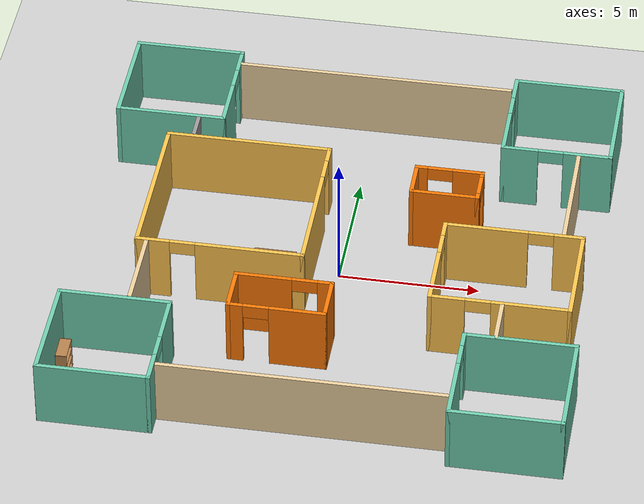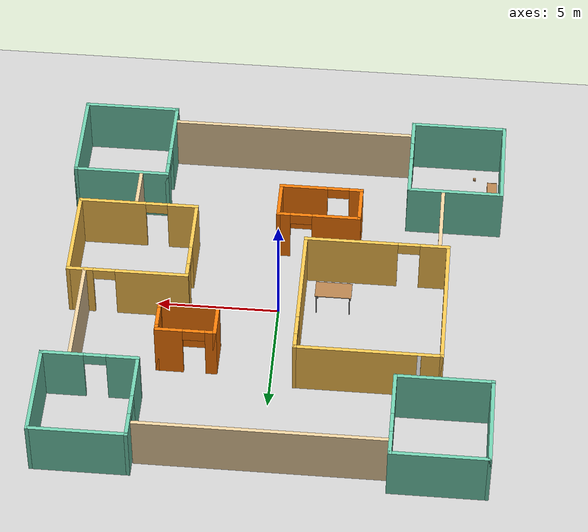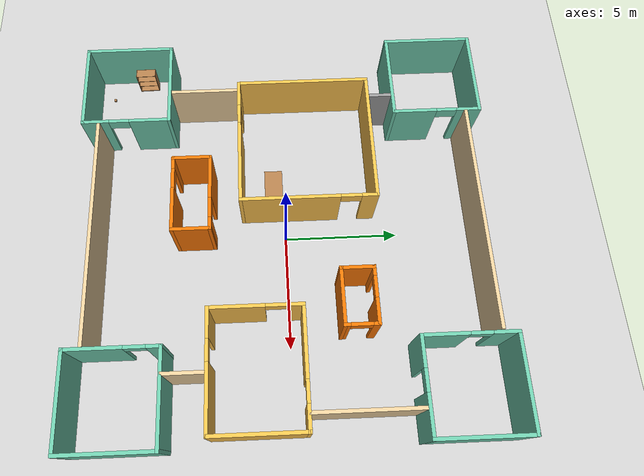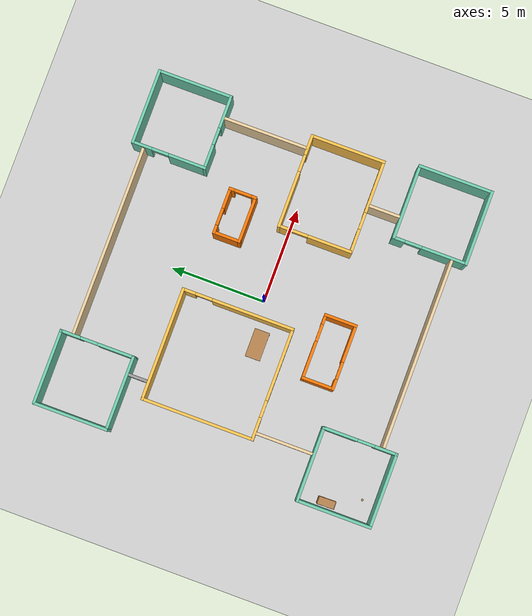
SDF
<sdf version="1.6">
 <world name="default">
  <model name="ground_plane">
   <static>1</static>
   <link name="link">
    <collision name="collision">
     <geometry><plane><normal>0 0 1</normal><size>100 100</size></plane></geometry>
     <surface><friction><ode><mu>100</mu><mu2>50</mu2></ode></friction></surface>
    </collision>
    <visual name="visual">
     <cast_shadows>0</cast_shadows>
     <geometry><plane><normal>0 0 1</normal><size>100 100</size></plane></geometry>
     <material>
      <script><uri>file://media/materials/scripts/gazebo.material</uri><name>Gazebo/Grey</name></script>
     </material>
    </visual>
   </link>
  </model>
  <model name="building">
   <pose>0.04416 0.01107 0 0 -0 0</pose>
   <link name="Wall_100">
    <collision name="Wall_100_Collision">
     <geometry><box><size>2.5 0.15 2.5</size></box></geometry>
     <pose>0 0 1.25 0 -0 0</pose>
    </collision>
    <visual name="Wall_100_Visual">
     <pose>0 0 1.25 0 -0 0</pose>
     <geometry><box><size>2.5 0.15 2.5</size></box></geometry>
     <material>
      <script><uri>file://media/materials/scripts/gazebo.material</uri><name>Gazebo/Grey</name></script>
      <ambient>0.996078 0.47451 0.0196078 1</ambient>
     </material>
     <meta><layer>0</layer></meta>
    </visual>
    <pose>3.37853 2.13615 0 0 -0 3.14159</pose>
   </link>
   <link name="Wall_101">
    <collision name="Wall_101_Collision">
     <geometry><box><size>1.5 0.15 2.5</size></box></geometry>
     <pose>0 0 1.25 0 -0 0</pose>
    </collision>
    <visual name="Wall_101_Visual">
     <pose>0 0 1.25 0 -0 0</pose>
     <geometry><box><size>1.5 0.15 2.5</size></box></geometry>
     <material>
      <script><uri>file://media/materials/scripts/gazebo.material</uri><name>Gazebo/Grey</name></script>
      <ambient>0.996078 0.47451 0.0196078 1</ambient>
     </material>
     <meta><layer>0</layer></meta>
    </visual>
    <pose>2.20353 2.81115 0 0 -0 1.5708</pose>
   </link>
   <link name="Wall_103">
    <collision name="Wall_103_Collision">
     <geometry><box><size>1.75 0.15 2.5</size></box></geometry>
     <pose>0 0 1.25 0 -0 0</pose>
    </collision>
    <visual name="Wall_103_Visual">
     <pose>0 0 1.25 0 -0 0</pose>
     <geometry><box><size>1.75 0.15 2.5</size></box></geometry>
     <material>
      <script><uri>file://media/materials/scripts/gazebo.material</uri><name>Gazebo/Grey</name></script>
      <ambient>0.996078 0.47451 0.0196078 1</ambient>
     </material>
     <meta><layer>0</layer></meta>
    </visual>
    <pose>-3.11094 -4.01873 0 0 0 -1.5708</pose>
   </link>
   <link name="Wall_104">
    <pose>-1.43594 -4.81873 0 0 -0 0</pose>
    <visual name="Wall_104_Visual_0">
     <pose>-1.45465 0 1.25 0 -0 0</pose>
     <geometry><box><size>0.590693 0.15 2.5</size></box></geometry>
     <material>
      <script><uri>file://media/materials/scripts/gazebo.material</uri><name>Gazebo/Grey</name></script>
      <ambient>0.996078 0.47451 0.0196078 1</ambient>
     </material>
     <meta><layer>0</layer></meta>
    </visual>
    <collision name="Wall_104_Collision_0">
     <geometry><box><size>0.590693 0.15 2.5</size></box></geometry>
     <pose>-1.45465 0 1.25 0 -0 0</pose>
    </collision>
    <visual name="Wall_104_Visual_1">
     <pose>0.745346 0 1.25 0 -0 0</pose>
     <geometry><box><size>2.00931 0.15 2.5</size></box></geometry>
     <material>
      <script><uri>file://media/materials/scripts/gazebo.material</uri><name>Gazebo/Grey</name></script>
      <ambient>0.996078 0.47451 0.0196078 1</ambient>
     </material>
     <meta><layer>0</layer></meta>
    </visual>
    <collision name="Wall_104_Collision_1">
     <geometry><box><size>2.00931 0.15 2.5</size></box></geometry>
     <pose>0.745346 0 1.25 0 -0 0</pose>
    </collision>
    <visual name="Wall_104_Visual_2">
     <pose>-0.709307 0 2.25 0 -0 0</pose>
     <geometry><box><size>0.9 0.15 0.5</size></box></geometry>
     <material>
      <script><uri>file://media/materials/scripts/gazebo.material</uri><name>Gazebo/Grey</name></script>
      <ambient>0.996078 0.47451 0.0196078 1</ambient>
     </material>
     <meta><layer>0</layer></meta>
    </visual>
    <collision name="Wall_104_Collision_2">
     <geometry><box><size>0.9 0.15 0.5</size></box></geometry>
     <pose>-0.709307 0 2.25 0 -0 0</pose>
    </collision>
   </link>
   <link name="Wall_105">
    <collision name="Wall_105_Collision">
     <geometry><box><size>1.75 0.15 2.5</size></box></geometry>
     <pose>0 0 1.25 0 -0 0</pose>
    </collision>
    <visual name="Wall_105_Visual">
     <pose>0 0 1.25 0 -0 0</pose>
     <geometry><box><size>1.75 0.15 2.5</size></box></geometry>
     <material>
      <script><uri>file://media/materials/scripts/gazebo.material</uri><name>Gazebo/Grey</name></script>
      <ambient>0.996078 0.47451 0.0196078 1</ambient>
     </material>
     <meta><layer>0</layer></meta>
    </visual>
    <pose>0.239057 -4.01873 0 0 -0 1.5708</pose>
   </link>
   <link name="Wall_106">
    <pose>-1.43594 -3.21873 0 0 -0 3.14159</pose>
    <visual name="Wall_106_Visual_0">
     <pose>-1.46139 0 1.25 0 -0 0</pose>
     <geometry><box><size>0.577222 0.15 2.5</size></box></geometry>
     <material>
      <script><uri>file://media/materials/scripts/gazebo.material</uri><name>Gazebo/Grey</name></script>
      <ambient>0.996078 0.47451 0.0196078 1</ambient>
     </material>
     <meta><layer>0</layer></meta>
    </visual>
    <collision name="Wall_106_Collision_0">
     <geometry><box><size>0.577222 0.15 2.5</size></box></geometry>
     <pose>-1.46139 0 1.25 0 -0 0</pose>
    </collision>
    <visual name="Wall_106_Visual_1">
     <pose>0.738611 0 1.25 0 -0 0</pose>
     <geometry><box><size>2.02278 0.15 2.5</size></box></geometry>
     <material>
      <script><uri>file://media/materials/scripts/gazebo.material</uri><name>Gazebo/Grey</name></script>
      <ambient>0.996078 0.47451 0.0196078 1</ambient>
     </material>
     <meta><layer>0</layer></meta>
    </visual>
    <collision name="Wall_106_Collision_1">
     <geometry><box><size>2.02278 0.15 2.5</size></box></geometry>
     <pose>0.738611 0 1.25 0 -0 0</pose>
    </collision>
    <visual name="Wall_106_Visual_2">
     <pose>-0.722778 0 2.25 0 -0 0</pose>
     <geometry><box><size>0.9 0.15 0.5</size></box></geometry>
     <material>
      <script><uri>file://media/materials/scripts/gazebo.material</uri><name>Gazebo/Grey</name></script>
      <ambient>0.996078 0.47451 0.0196078 1</ambient>
     </material>
     <meta><layer>0</layer></meta>
    </visual>
    <collision name="Wall_106_Collision_2">
     <geometry><box><size>0.9 0.15 0.5</size></box></geometry>
     <pose>-0.722778 0 2.25 0 -0 0</pose>
    </collision>
   </link>
   <link name="Wall_108">
    <collision name="Wall_108_Collision">
     <geometry><box><size>3 0.15 2.5</size></box></geometry>
     <pose>0 0 1.25 0 -0 0</pose>
    </collision>
    <visual name="Wall_108_Visual">
     <pose>0 0 1.25 0 -0 0</pose>
     <geometry><box><size>3 0.15 2.5</size></box></geometry>
     <material>
      <script><uri>file://media/materials/scripts/gazebo.material</uri><name>Gazebo/Grey</name></script>
      <ambient>0.921569 0.807843 0.615686 1</ambient>
     </material>
     <meta><layer>0</layer></meta>
    </visual>
    <pose>-6.50973 -3.48506 0 0 0 -1.5708</pose>
   </link>
   <link name="Wall_114">
    <collision name="Wall_114_Collision">
     <geometry><box><size>4.5 0.15 2.5</size></box></geometry>
     <pose>0 0 1.25 0 -0 0</pose>
    </collision>
    <visual name="Wall_114_Visual">
     <pose>0 0 1.25 0 -0 0</pose>
     <geometry><box><size>4.5 0.15 2.5</size></box></geometry>
     <material>
      <script><uri>file://media/materials/scripts/gazebo.material</uri><name>Gazebo/Grey</name></script>
      <ambient>0.921569 0.807843 0.615686 1</ambient>
     </material>
     <meta><layer>0</layer></meta>
    </visual>
    <pose>7.81153 2.79707 0 0 0 -1.5708</pose>
   </link>
   <link name="Wall_116">
    <collision name="Wall_116_Collision">
     <geometry><box><size>10 0.15 2.5</size></box></geometry>
     <pose>0 0 1.25 0 -0 0</pose>
    </collision>
    <visual name="Wall_116_Visual">
     <pose>0 0 1.25 0 -0 0</pose>
     <geometry><box><size>10 0.15 2.5</size></box></geometry>
     <material>
      <script><uri>file://media/materials/scripts/gazebo.material</uri><name>Gazebo/Grey</name></script>
      <ambient>0.921569 0.807843 0.615686 1</ambient>
     </material>
     <meta><layer>0</layer></meta>
    </visual>
    <pose>0.006519 -8.20878 0 0 -0 0</pose>
   </link>
   <link name="Wall_118">
    <collision name="Wall_118_Collision">
     <geometry><box><size>1.75 0.15 2.5</size></box></geometry>
     <pose>0 0 1.25 0 -0 0</pose>
    </collision>
    <visual name="Wall_118_Visual">
     <pose>0 0 1.25 0 -0 0</pose>
     <geometry><box><size>1.75 0.15 2.5</size></box></geometry>
     <material>
      <script><uri>file://media/materials/scripts/gazebo.material</uri><name>Gazebo/Grey</name></script>
      <ambient>0.921569 0.807843 0.615686 1</ambient>
     </material>
     <meta><layer>0</layer></meta>
    </visual>
    <pose>6.15848 -4.23502 0 0 0 -1.5708</pose>
   </link>
   <link name="Wall_121">
    <collision name="Wall_121_Collision">
     <geometry><box><size>1 0.15 2.5</size></box></geometry>
     <pose>0 0 1.25 0 -0 0</pose>
    </collision>
    <visual name="Wall_121_Visual">
     <pose>0 0 1.25 0 -0 0</pose>
     <geometry><box><size>1 0.15 2.5</size></box></geometry>
     <material>
      <script><uri>file://media/materials/scripts/gazebo.material</uri><name>Gazebo/Grey</name></script>
      <ambient>1 1 1 1</ambient>
     </material>
     <meta><layer>0</layer></meta>
    </visual>
    <pose>-5.96902 4.51336 0 0 0 -1.5708</pose>
   </link>
   <link name="Wall_124">
    <collision name="Wall_124_Collision">
     <geometry><box><size>10 0.15 2.5</size></box></geometry>
     <pose>0 0 1.25 0 -0 0</pose>
    </collision>
    <visual name="Wall_124_Visual">
     <pose>0 0 1.25 0 -0 0</pose>
     <geometry><box><size>10 0.15 2.5</size></box></geometry>
     <material>
      <script><uri>file://media/materials/scripts/gazebo.material</uri><name>Gazebo/Grey</name></script>
      <ambient>0.921569 0.807843 0.615686 1</ambient>
     </material>
     <meta><layer>0</layer></meta>
    </visual>
    <pose>-0.024379 8.30625 0 0 -0 0</pose>
   </link>
   <link name="Wall_58">
    <collision name="Wall_58_Collision">
     <geometry><box><size>4 0.15 2.5</size></box></geometry>
     <pose>0 0 1.25 0 -0 0</pose>
    </collision>
    <visual name="Wall_58_Visual">
     <pose>0 0 1.25 0 -0 0</pose>
     <geometry><box><size>4 0.15 2.5</size></box></geometry>
     <material>
      <script><uri>file://media/materials/scripts/gazebo.material</uri><name>Gazebo/Grey</name></script>
      <ambient>0.435294 0.796078 0.67451 1</ambient>
     </material>
     <meta><layer>0</layer></meta>
    </visual>
    <pose>-7.00929 8.93364 0 0 -0 0</pose>
   </link>
   <link name="Wall_59">
    <pose>-5.08429 7.00864 0 0 0 -1.5708</pose>
    <visual name="Wall_59_Visual_0">
     <pose>-1.4441 0 1.25 0 -0 0</pose>
     <geometry><box><size>1.11179 0.15 2.5</size></box></geometry>
     <material>
      <script><uri>file://media/materials/scripts/gazebo.material</uri><name>Gazebo/Grey</name></script>
      <ambient>0.435294 0.796078 0.67451 1</ambient>
     </material>
     <meta><layer>0</layer></meta>
    </visual>
    <collision name="Wall_59_Collision_0">
     <geometry><box><size>1.11179 0.15 2.5</size></box></geometry>
     <pose>-1.4441 0 1.25 0 -0 0</pose>
    </collision>
    <visual name="Wall_59_Visual_1">
     <pose>1.0059 0 1.25 0 -0 0</pose>
     <geometry><box><size>1.98821 0.15 2.5</size></box></geometry>
     <material>
      <script><uri>file://media/materials/scripts/gazebo.material</uri><name>Gazebo/Grey</name></script>
      <ambient>0.435294 0.796078 0.67451 1</ambient>
     </material>
     <meta><layer>0</layer></meta>
    </visual>
    <collision name="Wall_59_Collision_1">
     <geometry><box><size>1.98821 0.15 2.5</size></box></geometry>
     <pose>1.0059 0 1.25 0 -0 0</pose>
    </collision>
    <visual name="Wall_59_Visual_2">
     <pose>-0.438207 0 2.25 0 -0 0</pose>
     <geometry><box><size>0.9 0.15 0.5</size></box></geometry>
     <material>
      <script><uri>file://media/materials/scripts/gazebo.material</uri><name>Gazebo/Grey</name></script>
      <ambient>0.435294 0.796078 0.67451 1</ambient>
     </material>
     <meta><layer>0</layer></meta>
    </visual>
    <collision name="Wall_59_Collision_2">
     <geometry><box><size>0.9 0.15 0.5</size></box></geometry>
     <pose>-0.438207 0 2.25 0 -0 0</pose>
    </collision>
   </link>
   <link name="Wall_60">
    <collision name="Wall_60_Collision">
     <geometry><box><size>4 0.15 2.5</size></box></geometry>
     <pose>0 0 1.25 0 -0 0</pose>
    </collision>
    <visual name="Wall_60_Visual">
     <pose>0 0 1.25 0 -0 0</pose>
     <geometry><box><size>4 0.15 2.5</size></box></geometry>
     <material>
      <script><uri>file://media/materials/scripts/gazebo.material</uri><name>Gazebo/Grey</name></script>
      <ambient>0.435294 0.796078 0.67451 1</ambient>
     </material>
     <meta><layer>0</layer></meta>
    </visual>
    <pose>-7.00929 5.08364 0 0 -0 3.14159</pose>
   </link>
   <link name="Wall_61">
    <collision name="Wall_61_Collision">
     <geometry><box><size>4 0.15 2.5</size></box></geometry>
     <pose>0 0 1.25 0 -0 0</pose>
    </collision>
    <visual name="Wall_61_Visual">
     <pose>0 0 1.25 0 -0 0</pose>
     <geometry><box><size>4 0.15 2.5</size></box></geometry>
     <material>
      <script><uri>file://media/materials/scripts/gazebo.material</uri><name>Gazebo/Grey</name></script>
      <ambient>0.435294 0.796078 0.67451 1</ambient>
     </material>
     <meta><layer>0</layer></meta>
    </visual>
    <pose>-8.93429 7.00864 0 0 -0 1.5708</pose>
   </link>
   <link name="Wall_63">
    <collision name="Wall_63_Collision">
     <geometry><box><size>4 0.15 2.5</size></box></geometry>
     <pose>0 0 1.25 0 -0 0</pose>
    </collision>
    <visual name="Wall_63_Visual">
     <pose>0 0 1.25 0 -0 0</pose>
     <geometry><box><size>4 0.15 2.5</size></box></geometry>
     <material>
      <script><uri>file://media/materials/scripts/gazebo.material</uri><name>Gazebo/Grey</name></script>
      <ambient>0.435294 0.796078 0.67451 1</ambient>
     </material>
     <meta><layer>0</layer></meta>
    </visual>
    <pose>8.93429 6.99136 0 0 0 -1.5708</pose>
   </link>
   <link name="Wall_64">
    <pose>7.00929 5.06635 0 0 -0 3.14159</pose>
    <visual name="Wall_64_Visual_0">
     <pose>-1.11962 0 1.25 0 -0 0</pose>
     <geometry><box><size>1.76077 0.15 2.5</size></box></geometry>
     <material>
      <script><uri>file://media/materials/scripts/gazebo.material</uri><name>Gazebo/Grey</name></script>
      <ambient>0.435294 0.796078 0.67451 1</ambient>
     </material>
     <meta><layer>0</layer></meta>
    </visual>
    <collision name="Wall_64_Collision_0">
     <geometry><box><size>1.76077 0.15 2.5</size></box></geometry>
     <pose>-1.11962 0 1.25 0 -0 0</pose>
    </collision>
    <visual name="Wall_64_Visual_1">
     <pose>1.33038 0 1.25 0 -0 0</pose>
     <geometry><box><size>1.33923 0.15 2.5</size></box></geometry>
     <material>
      <script><uri>file://media/materials/scripts/gazebo.material</uri><name>Gazebo/Grey</name></script>
      <ambient>0.435294 0.796078 0.67451 1</ambient>
     </material>
     <meta><layer>0</layer></meta>
    </visual>
    <collision name="Wall_64_Collision_1">
     <geometry><box><size>1.33923 0.15 2.5</size></box></geometry>
     <pose>1.33038 0 1.25 0 -0 0</pose>
    </collision>
    <visual name="Wall_64_Visual_2">
     <pose>0.210767 0 2.25 0 -0 0</pose>
     <geometry><box><size>0.9 0.15 0.5</size></box></geometry>
     <material>
      <script><uri>file://media/materials/scripts/gazebo.material</uri><name>Gazebo/Grey</name></script>
      <ambient>0.435294 0.796078 0.67451 1</ambient>
     </material>
     <meta><layer>0</layer></meta>
    </visual>
    <collision name="Wall_64_Collision_2">
     <geometry><box><size>0.9 0.15 0.5</size></box></geometry>
     <pose>0.210767 0 2.25 0 -0 0</pose>
    </collision>
   </link>
   <link name="Wall_65">
    <pose>5.08429 6.99136 0 0 -0 1.5708</pose>
    <visual name="Wall_65_Visual_0">
     <pose>-0.997252 0 1.25 0 -0 0</pose>
     <geometry><box><size>2.0055 0.15 2.5</size></box></geometry>
     <material>
      <script><uri>file://media/materials/scripts/gazebo.material</uri><name>Gazebo/Grey</name></script>
      <ambient>0.435294 0.796078 0.67451 1</ambient>
     </material>
     <meta><layer>0</layer></meta>
    </visual>
    <collision name="Wall_65_Collision_0">
     <geometry><box><size>2.0055 0.15 2.5</size></box></geometry>
     <pose>-0.997252 0 1.25 0 -0 0</pose>
    </collision>
    <visual name="Wall_65_Visual_1">
     <pose>1.45275 0 1.25 0 -0 0</pose>
     <geometry><box><size>1.0945 0.15 2.5</size></box></geometry>
     <material>
      <script><uri>file://media/materials/scripts/gazebo.material</uri><name>Gazebo/Grey</name></script>
      <ambient>0.435294 0.796078 0.67451 1</ambient>
     </material>
     <meta><layer>0</layer></meta>
    </visual>
    <collision name="Wall_65_Collision_1">
     <geometry><box><size>1.0945 0.15 2.5</size></box></geometry>
     <pose>1.45275 0 1.25 0 -0 0</pose>
    </collision>
    <visual name="Wall_65_Visual_2">
     <pose>0.455496 0 2.25 0 -0 0</pose>
     <geometry><box><size>0.9 0.15 0.5</size></box></geometry>
     <material>
      <script><uri>file://media/materials/scripts/gazebo.material</uri><name>Gazebo/Grey</name></script>
      <ambient>0.435294 0.796078 0.67451 1</ambient>
     </material>
     <meta><layer>0</layer></meta>
    </visual>
    <collision name="Wall_65_Collision_2">
     <geometry><box><size>0.9 0.15 0.5</size></box></geometry>
     <pose>0.455496 0 2.25 0 -0 0</pose>
    </collision>
   </link>
   <link name="Wall_66">
    <collision name="Wall_66_Collision">
     <geometry><box><size>4 0.15 2.5</size></box></geometry>
     <pose>0 0 1.25 0 -0 0</pose>
    </collision>
    <visual name="Wall_66_Visual">
     <pose>0 0 1.25 0 -0 0</pose>
     <geometry><box><size>4 0.15 2.5</size></box></geometry>
     <material>
      <script><uri>file://media/materials/scripts/gazebo.material</uri><name>Gazebo/Grey</name></script>
      <ambient>0.435294 0.796078 0.67451 1</ambient>
     </material>
     <meta><layer>0</layer></meta>
    </visual>
    <pose>7.00929 8.91635 0 0 -0 0</pose>
   </link>
   <link name="Wall_71">
    <collision name="Wall_71_Collision">
     <geometry><box><size>4 0.15 2.5</size></box></geometry>
     <pose>0 0 1.25 0 -0 0</pose>
    </collision>
    <visual name="Wall_71_Visual">
     <pose>0 0 1.25 0 -0 0</pose>
     <geometry><box><size>4 0.15 2.5</size></box></geometry>
     <material>
      <script><uri>file://media/materials/scripts/gazebo.material</uri><name>Gazebo/Grey</name></script>
      <ambient>0.435294 0.796078 0.67451 1</ambient>
     </material>
     <meta><layer>0</layer></meta>
    </visual>
    <pose>7.00929 -8.93364 0 0 -0 3.14159</pose>
   </link>
   <link name="Wall_72">
    <pose>5.08429 -7.00864 0 0 -0 1.5708</pose>
    <visual name="Wall_72_Visual_0">
     <pose>-0.779391 0 1.25 0 -0 0</pose>
     <geometry><box><size>2.44122 0.15 2.5</size></box></geometry>
     <material>
      <script><uri>file://media/materials/scripts/gazebo.material</uri><name>Gazebo/Grey</name></script>
      <ambient>0.435294 0.796078 0.67451 1</ambient>
     </material>
     <meta><layer>0</layer></meta>
    </visual>
    <collision name="Wall_72_Collision_0">
     <geometry><box><size>2.44122 0.15 2.5</size></box></geometry>
     <pose>-0.779391 0 1.25 0 -0 0</pose>
    </collision>
    <visual name="Wall_72_Visual_1">
     <pose>1.67061 0 1.25 0 -0 0</pose>
     <geometry><box><size>0.658782 0.15 2.5</size></box></geometry>
     <material>
      <script><uri>file://media/materials/scripts/gazebo.material</uri><name>Gazebo/Grey</name></script>
      <ambient>0.435294 0.796078 0.67451 1</ambient>
     </material>
     <meta><layer>0</layer></meta>
    </visual>
    <collision name="Wall_72_Collision_1">
     <geometry><box><size>0.658782 0.15 2.5</size></box></geometry>
     <pose>1.67061 0 1.25 0 -0 0</pose>
    </collision>
    <visual name="Wall_72_Visual_2">
     <pose>0.891218 0 2.25 0 -0 0</pose>
     <geometry><box><size>0.9 0.15 0.5</size></box></geometry>
     <material>
      <script><uri>file://media/materials/scripts/gazebo.material</uri><name>Gazebo/Grey</name></script>
      <ambient>0.435294 0.796078 0.67451 1</ambient>
     </material>
     <meta><layer>0</layer></meta>
    </visual>
    <collision name="Wall_72_Collision_2">
     <geometry><box><size>0.9 0.15 0.5</size></box></geometry>
     <pose>0.891218 0 2.25 0 -0 0</pose>
    </collision>
   </link>
   <link name="Wall_73">
    <collision name="Wall_73_Collision">
     <geometry><box><size>4 0.15 2.5</size></box></geometry>
     <pose>0 0 1.25 0 -0 0</pose>
    </collision>
    <visual name="Wall_73_Visual">
     <pose>0 0 1.25 0 -0 0</pose>
     <geometry><box><size>4 0.15 2.5</size></box></geometry>
     <material>
      <script><uri>file://media/materials/scripts/gazebo.material</uri><name>Gazebo/Grey</name></script>
      <ambient>0.435294 0.796078 0.67451 1</ambient>
     </material>
     <meta><layer>0</layer></meta>
    </visual>
    <pose>7.00929 -5.08364 0 0 -0 0</pose>
   </link>
   <link name="Wall_74">
    <collision name="Wall_74_Collision">
     <geometry><box><size>4 0.15 2.5</size></box></geometry>
     <pose>0 0 1.25 0 -0 0</pose>
    </collision>
    <visual name="Wall_74_Visual">
     <pose>0 0 1.25 0 -0 0</pose>
     <geometry><box><size>4 0.15 2.5</size></box></geometry>
     <material>
      <script><uri>file://media/materials/scripts/gazebo.material</uri><name>Gazebo/Grey</name></script>
      <ambient>0.435294 0.796078 0.67451 1</ambient>
     </material>
     <meta><layer>0</layer></meta>
    </visual>
    <pose>8.93429 -7.00864 0 0 0 -1.5708</pose>
   </link>
   <link name="Wall_76">
    <collision name="Wall_76_Collision">
     <geometry><box><size>4 0.15 2.5</size></box></geometry>
     <pose>0 0 1.25 0 -0 0</pose>
    </collision>
    <visual name="Wall_76_Visual">
     <pose>0 0 1.25 0 -0 0</pose>
     <geometry><box><size>4 0.15 2.5</size></box></geometry>
     <material>
      <script><uri>file://media/materials/scripts/gazebo.material</uri><name>Gazebo/Grey</name></script>
      <ambient>0.435294 0.796078 0.67451 1</ambient>
     </material>
     <meta><layer>0</layer></meta>
    </visual>
    <pose>-7.00929 -8.91636 0 0 -0 0</pose>
   </link>
   <link name="Wall_77">
    <pose>-5.08429 -6.99136 0 0 -0 1.5708</pose>
    <visual name="Wall_77_Visual_0">
     <pose>-1.38249 0 1.25 0 -0 0</pose>
     <geometry><box><size>1.23503 0.15 2.5</size></box></geometry>
     <material>
      <script><uri>file://media/materials/scripts/gazebo.material</uri><name>Gazebo/Grey</name></script>
      <ambient>0.435294 0.796078 0.67451 1</ambient>
     </material>
     <meta><layer>0</layer></meta>
    </visual>
    <collision name="Wall_77_Collision_0">
     <geometry><box><size>1.23503 0.15 2.5</size></box></geometry>
     <pose>-1.38249 0 1.25 0 -0 0</pose>
    </collision>
    <visual name="Wall_77_Visual_1">
     <pose>1.06751 0 1.25 0 -0 0</pose>
     <geometry><box><size>1.86497 0.15 2.5</size></box></geometry>
     <material>
      <script><uri>file://media/materials/scripts/gazebo.material</uri><name>Gazebo/Grey</name></script>
      <ambient>0.435294 0.796078 0.67451 1</ambient>
     </material>
     <meta><layer>0</layer></meta>
    </visual>
    <collision name="Wall_77_Collision_1">
     <geometry><box><size>1.86497 0.15 2.5</size></box></geometry>
     <pose>1.06751 0 1.25 0 -0 0</pose>
    </collision>
    <visual name="Wall_77_Visual_2">
     <pose>-0.314972 0 2.25 0 -0 0</pose>
     <geometry><box><size>0.9 0.15 0.5</size></box></geometry>
     <material>
      <script><uri>file://media/materials/scripts/gazebo.material</uri><name>Gazebo/Grey</name></script>
      <ambient>0.435294 0.796078 0.67451 1</ambient>
     </material>
     <meta><layer>0</layer></meta>
    </visual>
    <collision name="Wall_77_Collision_2">
     <geometry><box><size>0.9 0.15 0.5</size></box></geometry>
     <pose>-0.314972 0 2.25 0 -0 0</pose>
    </collision>
   </link>
   <link name="Wall_78">
    <collision name="Wall_78_Collision">
     <geometry><box><size>4 0.15 2.5</size></box></geometry>
     <pose>0 0 1.25 0 -0 0</pose>
    </collision>
    <visual name="Wall_78_Visual">
     <pose>0 0 1.25 0 -0 0</pose>
     <geometry><box><size>4 0.15 2.5</size></box></geometry>
     <material>
      <script><uri>file://media/materials/scripts/gazebo.material</uri><name>Gazebo/Grey</name></script>
      <ambient>0.435294 0.796078 0.67451 1</ambient>
     </material>
     <meta><layer>0</layer></meta>
    </visual>
    <pose>-7.00929 -5.06636 0 0 -0 3.14159</pose>
   </link>
   <link name="Wall_79">
    <collision name="Wall_79_Collision">
     <geometry><box><size>4 0.15 2.5</size></box></geometry>
     <pose>0 0 1.25 0 -0 0</pose>
    </collision>
    <visual name="Wall_79_Visual">
     <pose>0 0 1.25 0 -0 0</pose>
     <geometry><box><size>4 0.15 2.5</size></box></geometry>
     <material>
      <script><uri>file://media/materials/scripts/gazebo.material</uri><name>Gazebo/Grey</name></script>
      <ambient>0.435294 0.796078 0.67451 1</ambient>
     </material>
     <meta><layer>0</layer></meta>
    </visual>
    <pose>-8.93429 -6.99136 0 0 0 -1.5708</pose>
   </link>
   <link name="Wall_84">
    <collision name="Wall_84_Collision">
     <geometry><box><size>6 0.15 2.5</size></box></geometry>
     <pose>0 0 1.25 0 -0 0</pose>
    </collision>
    <visual name="Wall_84_Visual">
     <pose>0 0 1.25 0 -0 0</pose>
     <geometry><box><size>6 0.15 2.5</size></box></geometry>
     <material>
      <script><uri>file://media/materials/scripts/gazebo.material</uri><name>Gazebo/Grey</name></script>
      <ambient>1 0.764706 0.305882 1</ambient>
     </material>
     <meta><layer>0</layer></meta>
    </visual>
    <pose>-3.94006 3.93417 0 0 -0 0</pose>
   </link>
   <link name="Wall_85">
    <pose>-1.01506 1.00917 0 0 0 -1.5708</pose>
    <visual name="Wall_85_Visual_0">
     <pose>-2.63359 0 1.25 0 -0 0</pose>
     <geometry><box><size>0.732823 0.15 2.5</size></box></geometry>
     <material>
      <script><uri>file://media/materials/scripts/gazebo.material</uri><name>Gazebo/Grey</name></script>
      <ambient>1 0.764706 0.305882 1</ambient>
     </material>
     <meta><layer>0</layer></meta>
    </visual>
    <collision name="Wall_85_Collision_0">
     <geometry><box><size>0.732823 0.15 2.5</size></box></geometry>
     <pose>-2.63359 0 1.25 0 -0 0</pose>
    </collision>
    <visual name="Wall_85_Visual_1">
     <pose>0.816412 0 1.25 0 -0 0</pose>
     <geometry><box><size>4.36718 0.15 2.5</size></box></geometry>
     <material>
      <script><uri>file://media/materials/scripts/gazebo.material</uri><name>Gazebo/Grey</name></script>
      <ambient>1 0.764706 0.305882 1</ambient>
     </material>
     <meta><layer>0</layer></meta>
    </visual>
    <collision name="Wall_85_Collision_1">
     <geometry><box><size>4.36718 0.15 2.5</size></box></geometry>
     <pose>0.816412 0 1.25 0 -0 0</pose>
    </collision>
    <visual name="Wall_85_Visual_2">
     <pose>-1.81718 0 2.25 0 -0 0</pose>
     <geometry><box><size>0.9 0.15 0.5</size></box></geometry>
     <material>
      <script><uri>file://media/materials/scripts/gazebo.material</uri><name>Gazebo/Grey</name></script>
      <ambient>1 0.764706 0.305882 1</ambient>
     </material>
     <meta><layer>0</layer></meta>
    </visual>
    <collision name="Wall_85_Collision_2">
     <geometry><box><size>0.9 0.15 0.5</size></box></geometry>
     <pose>-1.81718 0 2.25 0 -0 0</pose>
    </collision>
   </link>
   <link name="Wall_86">
    <pose>-3.94006 -1.91583 0 0 -0 3.14159</pose>
    <visual name="Wall_86_Visual_0">
     <pose>-1.06873 0 1.25 0 -0 0</pose>
     <geometry><box><size>3.86254 0.15 2.5</size></box></geometry>
     <material>
      <script><uri>file://media/materials/scripts/gazebo.material</uri><name>Gazebo/Grey</name></script>
      <ambient>1 0.764706 0.305882 1</ambient>
     </material>
     <meta><layer>0</layer></meta>
    </visual>
    <collision name="Wall_86_Collision_0">
     <geometry><box><size>3.86254 0.15 2.5</size></box></geometry>
     <pose>-1.06873 0 1.25 0 -0 0</pose>
    </collision>
    <visual name="Wall_86_Visual_1">
     <pose>2.38127 0 1.25 0 -0 0</pose>
     <geometry><box><size>1.23746 0.15 2.5</size></box></geometry>
     <material>
      <script><uri>file://media/materials/scripts/gazebo.material</uri><name>Gazebo/Grey</name></script>
      <ambient>1 0.764706 0.305882 1</ambient>
     </material>
     <meta><layer>0</layer></meta>
    </visual>
    <collision name="Wall_86_Collision_1">
     <geometry><box><size>1.23746 0.15 2.5</size></box></geometry>
     <pose>2.38127 0 1.25 0 -0 0</pose>
    </collision>
    <visual name="Wall_86_Visual_2">
     <pose>1.31254 0 2.25 0 -0 0</pose>
     <geometry><box><size>0.9 0.15 0.5</size></box></geometry>
     <material>
      <script><uri>file://media/materials/scripts/gazebo.material</uri><name>Gazebo/Grey</name></script>
      <ambient>1 0.764706 0.305882 1</ambient>
     </material>
     <meta><layer>0</layer></meta>
    </visual>
    <collision name="Wall_86_Collision_2">
     <geometry><box><size>0.9 0.15 0.5</size></box></geometry>
     <pose>1.31254 0 2.25 0 -0 0</pose>
    </collision>
   </link>
   <link name="Wall_87">
    <collision name="Wall_87_Collision">
     <geometry><box><size>6 0.15 2.5</size></box></geometry>
     <pose>0 0 1.25 0 -0 0</pose>
    </collision>
    <visual name="Wall_87_Visual">
     <pose>0 0 1.25 0 -0 0</pose>
     <geometry><box><size>6 0.15 2.5</size></box></geometry>
     <material>
      <script><uri>file://media/materials/scripts/gazebo.material</uri><name>Gazebo/Grey</name></script>
      <ambient>1 0.764706 0.305882 1</ambient>
     </material>
     <meta><layer>0</layer></meta>
    </visual>
    <pose>-6.86506 1.00917 0 0 -0 1.5708</pose>
   </link>
   <link name="Wall_89">
    <collision name="Wall_89_Collision">
     <geometry><box><size>4 0.15 2.5</size></box></geometry>
     <pose>0 0 1.25 0 -0 0</pose>
    </collision>
    <visual name="Wall_89_Visual">
     <pose>0 0 1.25 0 -0 0</pose>
     <geometry><box><size>4 0.15 2.5</size></box></geometry>
     <material>
      <script><uri>file://media/materials/scripts/gazebo.material</uri><name>Gazebo/Grey</name></script>
      <ambient>1 0.764706 0.305882 1</ambient>
     </material>
     <meta><layer>0</layer></meta>
    </visual>
    <pose>8.49129 -1.38643 0 0 -0 1.5708</pose>
   </link>
   <link name="Wall_90">
    <pose>6.06629 0.538572 0 0 -0 3.14159</pose>
    <visual name="Wall_90_Visual_0">
     <pose>-1.9492 0 1.25 0 -0 0</pose>
     <geometry><box><size>1.1016 0.15 2.5</size></box></geometry>
     <material>
      <script><uri>file://media/materials/scripts/gazebo.material</uri><name>Gazebo/Grey</name></script>
      <ambient>1 0.764706 0.305882 1</ambient>
     </material>
     <meta><layer>0</layer></meta>
    </visual>
    <collision name="Wall_90_Collision_0">
     <geometry><box><size>1.1016 0.15 2.5</size></box></geometry>
     <pose>-1.9492 0 1.25 0 -0 0</pose>
    </collision>
    <visual name="Wall_90_Visual_1">
     <pose>1.0008 0 1.25 0 -0 0</pose>
     <geometry><box><size>2.9984 0.15 2.5</size></box></geometry>
     <material>
      <script><uri>file://media/materials/scripts/gazebo.material</uri><name>Gazebo/Grey</name></script>
      <ambient>1 0.764706 0.305882 1</ambient>
     </material>
     <meta><layer>0</layer></meta>
    </visual>
    <collision name="Wall_90_Collision_1">
     <geometry><box><size>2.9984 0.15 2.5</size></box></geometry>
     <pose>1.0008 0 1.25 0 -0 0</pose>
    </collision>
    <visual name="Wall_90_Visual_2">
     <pose>-0.948401 0 2.25 0 -0 0</pose>
     <geometry><box><size>0.9 0.15 0.5</size></box></geometry>
     <material>
      <script><uri>file://media/materials/scripts/gazebo.material</uri><name>Gazebo/Grey</name></script>
      <ambient>1 0.764706 0.305882 1</ambient>
     </material>
     <meta><layer>0</layer></meta>
    </visual>
    <collision name="Wall_90_Collision_2">
     <geometry><box><size>0.9 0.15 0.5</size></box></geometry>
     <pose>-0.948401 0 2.25 0 -0 0</pose>
    </collision>
   </link>
   <link name="Wall_91">
    <pose>3.64129 -1.38643 0 0 0 -1.5708</pose>
    <visual name="Wall_91_Visual_0">
     <pose>-1.64261 0 1.25 0 -0 0</pose>
     <geometry><box><size>0.714781 0.15 2.5</size></box></geometry>
     <material>
      <script><uri>file://media/materials/scripts/gazebo.material</uri><name>Gazebo/Grey</name></script>
      <ambient>1 0.764706 0.305882 1</ambient>
     </material>
     <meta><layer>0</layer></meta>
    </visual>
    <collision name="Wall_91_Collision_0">
     <geometry><box><size>0.714781 0.15 2.5</size></box></geometry>
     <pose>-1.64261 0 1.25 0 -0 0</pose>
    </collision>
    <visual name="Wall_91_Visual_1">
     <pose>0.80739 0 1.25 0 -0 0</pose>
     <geometry><box><size>2.38522 0.15 2.5</size></box></geometry>
     <material>
      <script><uri>file://media/materials/scripts/gazebo.material</uri><name>Gazebo/Grey</name></script>
      <ambient>1 0.764706 0.305882 1</ambient>
     </material>
     <meta><layer>0</layer></meta>
    </visual>
    <collision name="Wall_91_Collision_1">
     <geometry><box><size>2.38522 0.15 2.5</size></box></geometry>
     <pose>0.80739 0 1.25 0 -0 0</pose>
    </collision>
    <visual name="Wall_91_Visual_2">
     <pose>-0.835219 0 2.25 0 -0 0</pose>
     <geometry><box><size>0.9 0.15 0.5</size></box></geometry>
     <material>
      <script><uri>file://media/materials/scripts/gazebo.material</uri><name>Gazebo/Grey</name></script>
      <ambient>1 0.764706 0.305882 1</ambient>
     </material>
     <meta><layer>0</layer></meta>
    </visual>
    <collision name="Wall_91_Collision_2">
     <geometry><box><size>0.9 0.15 0.5</size></box></geometry>
     <pose>-0.835219 0 2.25 0 -0 0</pose>
    </collision>
   </link>
   <link name="Wall_92">
    <pose>6.06629 -3.31143 0 0 -0 0</pose>
    <visual name="Wall_92_Visual_0">
     <pose>-1.85194 0 1.25 0 -0 0</pose>
     <geometry><box><size>1.29611 0.15 2.5</size></box></geometry>
     <material>
      <script><uri>file://media/materials/scripts/gazebo.material</uri><name>Gazebo/Grey</name></script>
      <ambient>1 0.764706 0.305882 1</ambient>
     </material>
     <meta><layer>0</layer></meta>
    </visual>
    <collision name="Wall_92_Collision_0">
     <geometry><box><size>1.29611 0.15 2.5</size></box></geometry>
     <pose>-1.85194 0 1.25 0 -0 0</pose>
    </collision>
    <visual name="Wall_92_Visual_1">
     <pose>1.09806 0 1.25 0 -0 0</pose>
     <geometry><box><size>2.80389 0.15 2.5</size></box></geometry>
     <material>
      <script><uri>file://media/materials/scripts/gazebo.material</uri><name>Gazebo/Grey</name></script>
      <ambient>1 0.764706 0.305882 1</ambient>
     </material>
     <meta><layer>0</layer></meta>
    </visual>
    <collision name="Wall_92_Collision_1">
     <geometry><box><size>2.80389 0.15 2.5</size></box></geometry>
     <pose>1.09806 0 1.25 0 -0 0</pose>
    </collision>
    <visual name="Wall_92_Visual_2">
     <pose>-0.753889 0 2.25 0 -0 0</pose>
     <geometry><box><size>0.9 0.15 0.5</size></box></geometry>
     <material>
      <script><uri>file://media/materials/scripts/gazebo.material</uri><name>Gazebo/Grey</name></script>
      <ambient>1 0.764706 0.305882 1</ambient>
     </material>
     <meta><layer>0</layer></meta>
    </visual>
    <collision name="Wall_92_Collision_2">
     <geometry><box><size>0.9 0.15 0.5</size></box></geometry>
     <pose>-0.753889 0 2.25 0 -0 0</pose>
    </collision>
   </link>
   <link name="Wall_98">
    <pose>3.37853 3.48615 0 0 -0 0</pose>
    <visual name="Wall_98_Visual_0">
     <pose>-1.01792 0 1.25 0 -0 0</pose>
     <geometry><box><size>0.464152 0.15 2.5</size></box></geometry>
     <material>
      <script><uri>file://media/materials/scripts/gazebo.material</uri><name>Gazebo/Grey</name></script>
      <ambient>0.996078 0.47451 0.0196078 1</ambient>
     </material>
     <meta><layer>0</layer></meta>
    </visual>
    <collision name="Wall_98_Collision_0">
     <geometry><box><size>0.464152 0.15 2.5</size></box></geometry>
     <pose>-1.01792 0 1.25 0 -0 0</pose>
    </collision>
    <visual name="Wall_98_Visual_1">
     <pose>0.682076 0 1.25 0 -0 0</pose>
     <geometry><box><size>1.13585 0.15 2.5</size></box></geometry>
     <material>
      <script><uri>file://media/materials/scripts/gazebo.material</uri><name>Gazebo/Grey</name></script>
      <ambient>0.996078 0.47451 0.0196078 1</ambient>
     </material>
     <meta><layer>0</layer></meta>
    </visual>
    <collision name="Wall_98_Collision_1">
     <geometry><box><size>1.13585 0.15 2.5</size></box></geometry>
     <pose>0.682076 0 1.25 0 -0 0</pose>
    </collision>
    <visual name="Wall_98_Visual_2">
     <pose>-0.335848 0 2.25 0 -0 0</pose>
     <geometry><box><size>0.9 0.15 0.5</size></box></geometry>
     <material>
      <script><uri>file://media/materials/scripts/gazebo.material</uri><name>Gazebo/Grey</name></script>
      <ambient>0.996078 0.47451 0.0196078 1</ambient>
     </material>
     <meta><layer>0</layer></meta>
    </visual>
    <collision name="Wall_98_Collision_2">
     <geometry><box><size>0.9 0.15 0.5</size></box></geometry>
     <pose>-0.335848 0 2.25 0 -0 0</pose>
    </collision>
   </link>
   <link name="Wall_99">
    <pose>4.55353 2.81115 0 0 0 -1.5708</pose>
    <visual name="Wall_99_Visual_0">
     <pose>-0.594089 0 1.25 0 -0 0</pose>
     <geometry><box><size>0.311822 0.15 2.5</size></box></geometry>
     <material>
      <script><uri>file://media/materials/scripts/gazebo.material</uri><name>Gazebo/Grey</name></script>
      <ambient>0.996078 0.47451 0.0196078 1</ambient>
     </material>
     <meta><layer>0</layer></meta>
    </visual>
    <collision name="Wall_99_Collision_0">
     <geometry><box><size>0.311822 0.15 2.5</size></box></geometry>
     <pose>-0.594089 0 1.25 0 -0 0</pose>
    </collision>
    <visual name="Wall_99_Visual_1">
     <pose>0.605911 0 1.25 0 -0 0</pose>
     <geometry><box><size>0.288178 0.15 2.5</size></box></geometry>
     <material>
      <script><uri>file://media/materials/scripts/gazebo.material</uri><name>Gazebo/Grey</name></script>
      <ambient>0.996078 0.47451 0.0196078 1</ambient>
     </material>
     <meta><layer>0</layer></meta>
    </visual>
    <collision name="Wall_99_Collision_1">
     <geometry><box><size>0.288178 0.15 2.5</size></box></geometry>
     <pose>0.605911 0 1.25 0 -0 0</pose>
    </collision>
    <visual name="Wall_99_Visual_2">
     <pose>0.011822 0 2.25 0 -0 0</pose>
     <geometry><box><size>0.9 0.15 0.5</size></box></geometry>
     <material>
      <script><uri>file://media/materials/scripts/gazebo.material</uri><name>Gazebo/Grey</name></script>
      <ambient>0.996078 0.47451 0.0196078 1</ambient>
     </material>
     <meta><layer>0</layer></meta>
    </visual>
    <collision name="Wall_99_Collision_2">
     <geometry><box><size>0.9 0.15 0.5</size></box></geometry>
     <pose>0.011822 0 2.25 0 -0 0</pose>
    </collision>
   </link>
   <static>1</static>
  </model>
  <model name="table">
   <static>1</static>
   <link name="link">
    <collision name="surface">
     <pose>0 0 1 0 -0 0</pose>
     <geometry><box><size>1.5 0.8 0.03</size></box></geometry>
     <surface><friction><ode><mu>0.6</mu><mu2>0.6</mu2></ode></friction></surface>
    </collision>
    <visual name="visual1">
     <pose>0 0 1 0 -0 0</pose>
     <geometry><box><size>1.5 0.8 0.03</size></box></geometry>
     <material>
      <script><uri>file://media/materials/scripts/gazebo.material</uri><name>Gazebo/Wood</name></script>
     </material>
    </visual>
    <collision name="front_left_leg">
     <pose>0.68 0.38 0.5 0 -0 0</pose>
     <geometry><cylinder><radius>0.02</radius><length>1</length></cylinder></geometry>
    </collision>
    <visual name="front_left_leg">
     <pose>0.68 0.38 0.5 0 -0 0</pose>
     <geometry><cylinder><radius>0.02</radius><length>1</length></cylinder></geometry>
     <material>
      <script><uri>file://media/materials/scripts/gazebo.material</uri><name>Gazebo/Grey</name></script>
     </material>
    </visual>
    <collision name="front_right_leg">
     <pose>0.68 -0.38 0.5 0 -0 0</pose>
     <geometry><cylinder><radius>0.02</radius><length>1</length></cylinder></geometry>
    </collision>
    <visual name="front_right_leg">
     <pose>0.68 -0.38 0.5 0 -0 0</pose>
     <geometry><cylinder><radius>0.02</radius><length>1</length></cylinder></geometry>
     <material>
      <script><uri>file://media/materials/scripts/gazebo.material</uri><name>Gazebo/Grey</name></script>
     </material>
    </visual>
    <collision name="back_right_leg">
     <pose>-0.68 -0.38 0.5 0 -0 0</pose>
     <geometry><cylinder><radius>0.02</radius><length>1</length></cylinder></geometry>
    </collision>
    <visual name="back_right_leg">
     <pose>-0.68 -0.38 0.5 0 -0 0</pose>
     <geometry><cylinder><radius>0.02</radius><length>1</length></cylinder></geometry>
     <material>
      <script><uri>file://media/materials/scripts/gazebo.material</uri><name>Gazebo/Grey</name></script>
     </material>
    </visual>
    <collision name="back_left_leg">
     <pose>-0.68 0.38 0.5 0 -0 0</pose>
     <geometry><cylinder><radius>0.02</radius><length>1</length></cylinder></geometry>
    </collision>
    <visual name="back_left_leg">
     <pose>-0.68 0.38 0.5 0 -0 0</pose>
     <geometry><cylinder><radius>0.02</radius><length>1</length></cylinder></geometry>
     <material>
      <script><uri>file://media/materials/scripts/gazebo.material</uri><name>Gazebo/Grey</name></script>
     </material>
    </visual>
   </link>
   <pose>-2.23388 -0.476822 0 0 -0 0</pose>
  </model>
  <model name="bookshelf">
   <static>1</static>
   <link name="link">
    <inertial><mass>1</mass></inertial>
    <collision name="back">
     <pose>0 0.005 0.6 0 -0 0</pose>
     <geometry><box><size>0.9 0.01 1.2</size></box></geometry>
    </collision>
    <visual name="visual1">
     <pose>0 0.005 0.6 0 -0 0</pose>
     <geometry><box><size>0.9 0.01 1.2</size></box></geometry>
     <material>
      <script><uri>file://media/materials/scripts/gazebo.material</uri><name>Gazebo/Wood</name></script>
     </material>
    </visual>
    <collision name="left_side">
     <pose>0.45 -0.195 0.6 0 -0 0</pose>
     <geometry><box><size>0.02 0.4 1.2</size></box></geometry>
    </collision>
    <visual name="visual2">
     <pose>0.45 -0.195 0.6 0 -0 0</pose>
     <geometry><box><size>0.02 0.4 1.2</size></box></geometry>
     <material>
      <script><uri>file://media/materials/scripts/gazebo.material</uri><name>Gazebo/Wood</name></script>
     </material>
    </visual>
    <collision name="right_side">
     <pose>-0.45 -0.195 0.6 0 -0 0</pose>
     <geometry><box><size>0.02 0.4 1.2</size></box></geometry>
    </collision>
    <visual name="visual3">
     <pose>-0.45 -0.195 0.6 0 -0 0</pose>
     <geometry><box><size>0.02 0.4 1.2</size></box></geometry>
     <material>
      <script><uri>file://media/materials/scripts/gazebo.material</uri><name>Gazebo/Wood</name></script>
     </material>
    </visual>
    <collision name="bottom">
     <pose>0 -0.195 0.03 0 -0 0</pose>
     <geometry><box><size>0.88 0.4 0.06</size></box></geometry>
    </collision>
    <visual name="visual4">
     <pose>0 -0.195 0.03 0 -0 0</pose>
     <geometry><box><size>0.88 0.4 0.06</size></box></geometry>
     <material>
      <script><uri>file://media/materials/scripts/gazebo.material</uri><name>Gazebo/Wood</name></script>
     </material>
    </visual>
    <collision name="top">
     <pose>0 -0.195 1.19 0 -0 0</pose>
     <geometry><box><size>0.88 0.4 0.02</size></box></geometry>
    </collision>
    <visual name="visual5">
     <pose>0 -0.195 1.19 0 -0 0</pose>
     <geometry><box><size>0.88 0.4 0.02</size></box></geometry>
     <material>
      <script><uri>file://media/materials/scripts/gazebo.material</uri><name>Gazebo/Wood</name></script>
     </material>
    </visual>
    <collision name="low_shelf">
     <pose>0 -0.195 0.43 0 -0 0</pose>
     <geometry><box><size>0.88 0.4 0.02</size></box></geometry>
    </collision>
    <visual name="visual6">
     <pose>0 -0.195 0.43 0 -0 0</pose>
     <geometry><box><size>0.88 0.4 0.02</size></box></geometry>
     <material>
      <script><uri>file://media/materials/scripts/gazebo.material</uri><name>Gazebo/Wood</name></script>
     </material>
    </visual>
    <collision name="high_shelf">
     <pose>0 -0.195 0.8 0 -0 0</pose>
     <geometry><box><size>0.88 0.4 0.02</size></box></geometry>
    </collision>
    <visual name="visual7">
     <pose>0 -0.195 0.8 0 -0 0</pose>
     <geometry><box><size>0.88 0.4 0.02</size></box></geometry>
     <material>
      <script><uri>file://media/materials/scripts/gazebo.material</uri><name>Gazebo/Wood</name></script>
     </material>
    </visual>
   </link>
   <pose>-8.70408 -6.50656 0 0 -0 1.58959</pose>
  </model>
  <model name="wood_cube_10cm">
   <link name="link">
    <pose>0 0 0.05 0 -0 0</pose>
    <inertial>
     <mass>0.5167</mass>
     <inertia>
      <ixx>0.000861167</ixx>
      <ixy>0</ixy>
      <ixz>0</ixz>
      <iyy>0.000861167</iyy>
      <iyz>0</iyz>
      <izz>0.000861167</izz>
     </inertia>
    </inertial>
    <collision name="collision">
     <geometry><box><size>0.1 0.1 0.1</size></box></geometry>
     <surface>
      <contact>
       <poissons_ratio>0.347</poissons_ratio>
       <elastic_modulus>8.8e+09</elastic_modulus>
       <ode><kp>100000</kp><kd>100</kd><max_vel>100</max_vel><min_depth>0.001</min_depth></ode>
      </contact>
      <friction>
       <torsional>
        <coefficient>1</coefficient>
        <use_patch_radius>0</use_patch_radius>
        <surface_radius>0.01</surface_radius>
       </torsional>
      </friction>
     </surface>
    </collision>
    <visual name="visual">
     <geometry><box><size>0.1 0.1 0.1</size></box></geometry>
     <material>
      <script><uri>file://media/materials/scripts/gazebo.material</uri><name>Gazebo/Wood</name></script>
     </material>
    </visual>
   </link>
   <pose>-7.77007 -8.21526 -0.001013 0 -0 0</pose>
  </model>
 </world>
</sdf>
